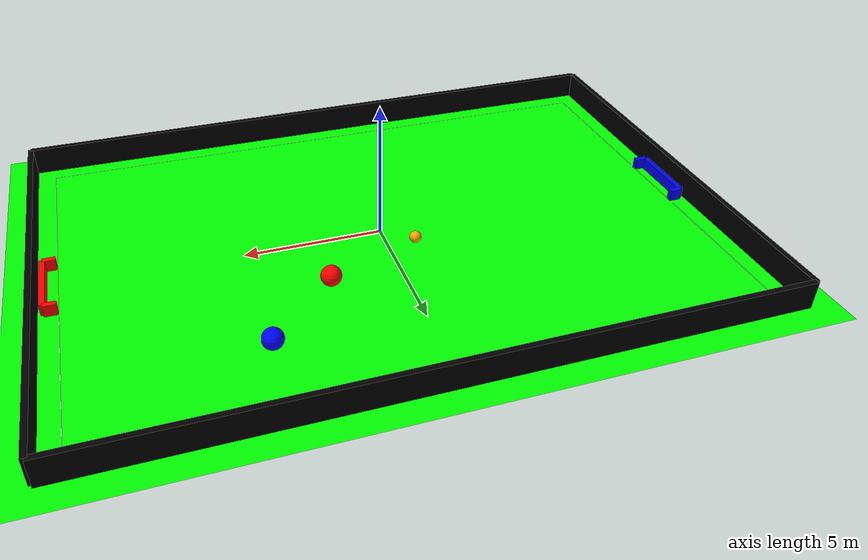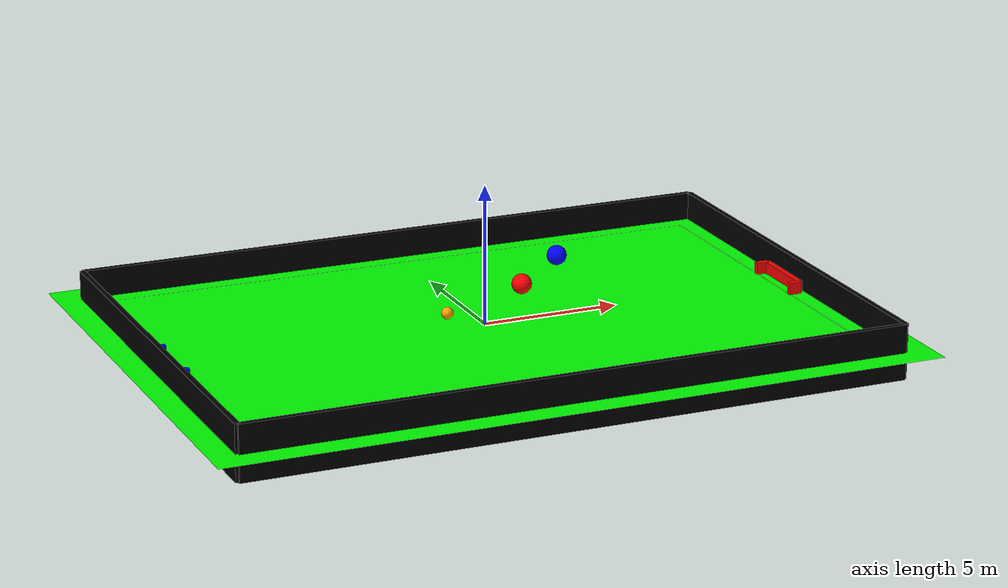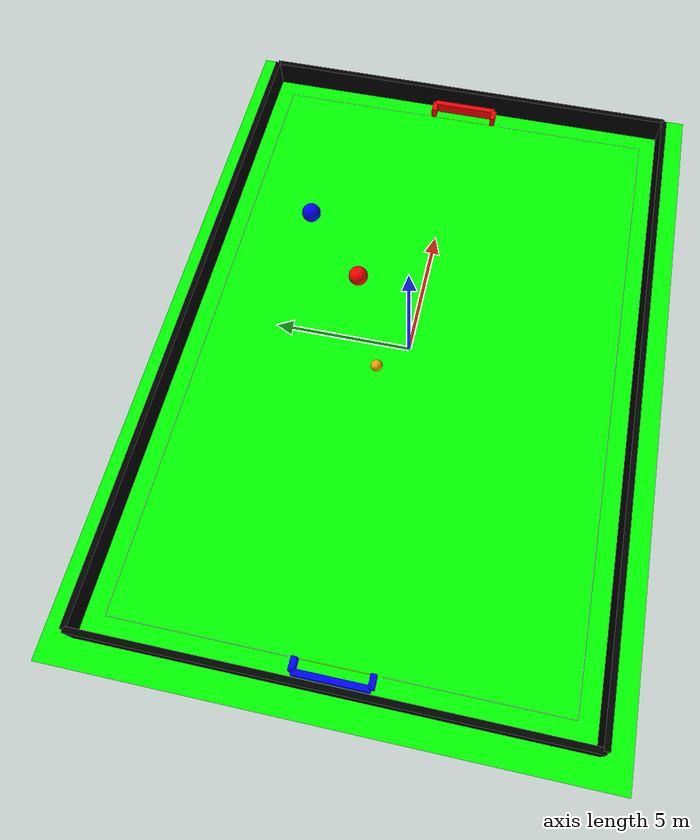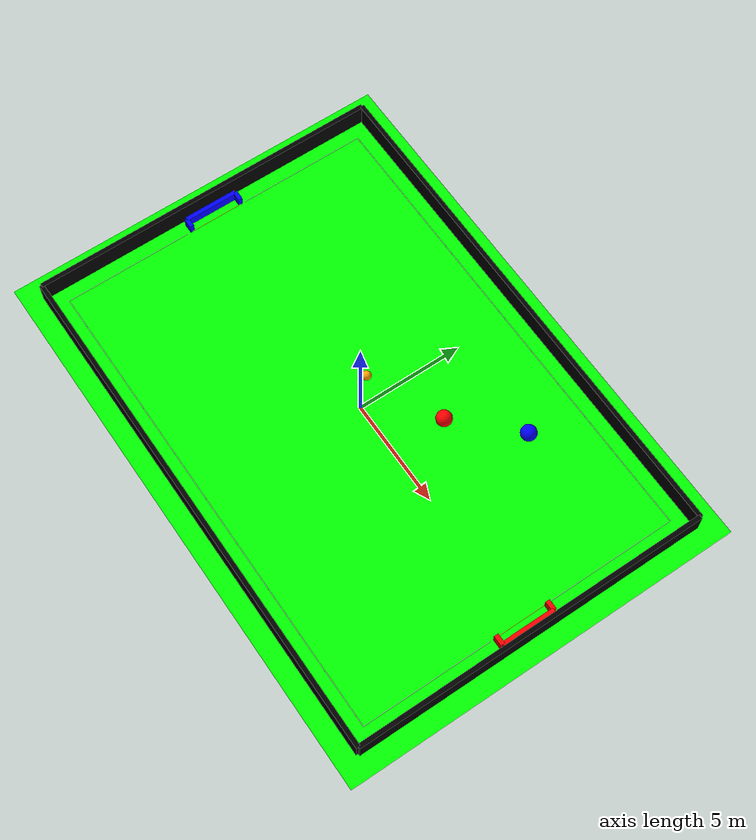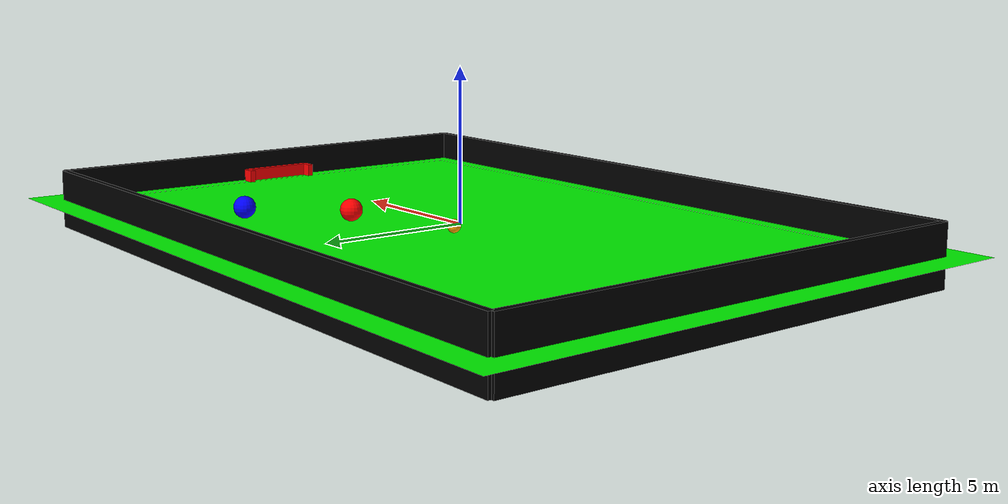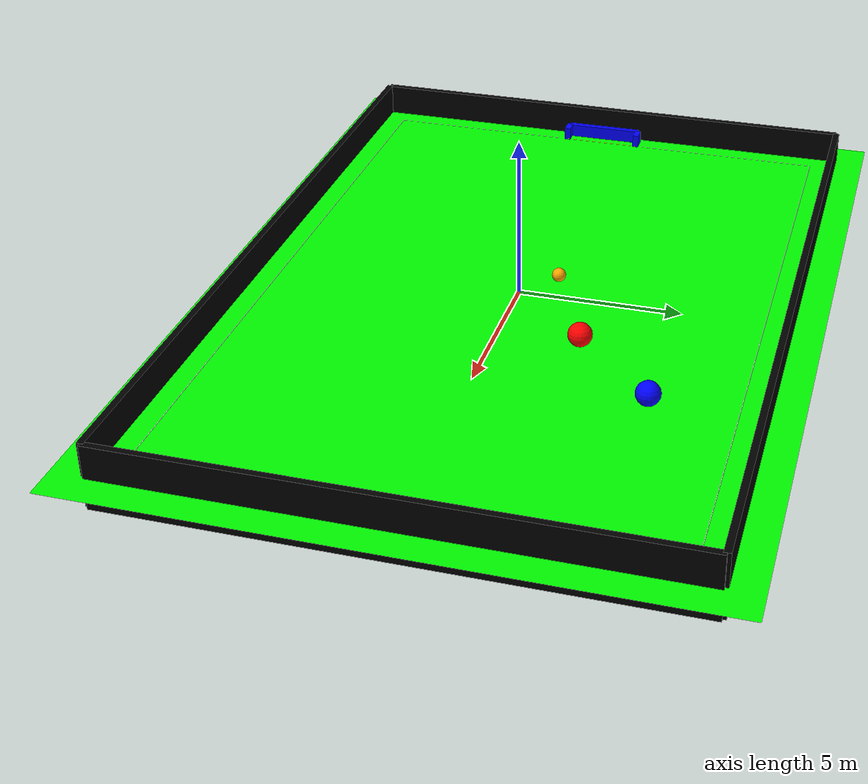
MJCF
<mujoco>

	<default>
		<geom contype="1" conaffinity="1" condim="3" friction=".5 .02 .02" />
	</default>

	<worldbody>

		<body name="arena">

			<geom name="field" type="plane" size="13 9.25 0.1" pos="0 0 0" rgba="0 1 0 1" />

			<geom name="boundary_S" type="box" size="12 0.1 1" pos="0 8.25 0" rgba="0 0 0 1" mass="1000" />
			<geom name="boundary_N" type="box" size="12 0.1 1" pos="0 -8.25 0" rgba="0 0 0 1" mass="1000" />
			<geom name="boundary_W" type="box" size="8.25 0.1 1" pos="12 0 0" rgba="0 0 0 1" euler="0 0 90" mass="1000" />
			<geom name="boundary_E" type="box" size="8.25 0.1 1" pos="-12 0 0" rgba="0 0 0 1" euler="0 0 90" mass="1000" />

			<geom name="goalE_W" type="box" size="1.25 0.1 0.4" pos="11.7 0 0" rgba="1 0 0 1" euler="0 0 90" />
			<geom name="goalE_S" type="box" size="0.225 0.1 0.4" pos="11.475 1.25 0" rgba="1 0 0 1" />
			<geom name="goalE_N" type="box" size="0.225 0.1 0.4" pos="11.475 -1.25 0" rgba="1 0 0 1" />

			<geom name="goalW_E" type="box" size="1.25 0.1 0.4" pos="-11.7 0 0" rgba="0 0 1 1" euler="0 0 90" />
			<geom name="goalW_S" type="box" size="0.225 0.1 0.4" pos="-11.475 1.25 0" rgba="0 0 1 1" />
			<geom name="goalW_N" type="box" size="0.225 0.1 0.4" pos="-11.475 -1.25 0" rgba="0 0 1 1" />

			<geom name="line_S" type="box" size="0.001 11.25 0.01" pos="0 7.5 0" rgba="255 255 255 1" euler="90 0 90" />
			<geom name="line_N" type="box" size="0.001 11.25 0.01" pos="0 -7.5 0" rgba="255 255 255 1" euler="90 0 90" />
			<geom name="line_goalE" type="box" size="0.001 1.25 0.01" pos="-11.25 0 0" rgba="255 255 0 1" euler="0 90 0" />
			<geom name="line_goalE_N" type="box" size="0.001 3 0.01" pos="-11.25 -4.5 0" rgba="255 255 255 1" euler="0 90 0" />
			<geom name="line_goalE_S" type="box" size="0.001 3 0.01" pos="-11.25 4.5 0" rgba="255 255 255 1" euler="0 90 0" />
			<geom name="line_goalW" type="box" size="0.001 1.25 0.01" pos="11.25 0 0" rgba="255 255 0 1" euler="0 90 0" />
			<geom name="line_goalW_N" type="box" size="0.001 3 0.01" pos="11.25 -4.5 0" rgba="255 255 255 1" euler="0 90 0" />
			<geom name="line_goalW_S" type="box" size="0.001 3 0.01" pos="11.25 4.5 0" rgba="255 255 255 1" euler="0 90 0" />

		</body>

		<body name="ball" pos="-1 1 0.215">
			<geom name="ball" type="sphere" size="0.215" rgba="1 0.647 0 1" mass="2.77" friction="1" />
			<joint name="ball" type="free" />
		</body>

		<body name="home_player_1" pos="5 5 0.365">
			<geom name="home_player_1" type="sphere" size="0.365" rgba="0 0 1 1" mass="200" density="100" />
			<joint name="home_player_1" type="free" />
		</body>

				<!-- Obstacles -->
		<body name="away_player_1" pos="2.5 2.5 0.365">
			<geom name="away_player_1" type="sphere" size="0.365" rgba="1 0 0 1" mass="200" density="100" />
			<joint name="away_player_1" type="free" />
		</body>
		<body name="away_player_2" pos="2.5 2.5 0.365">
			<geom name="away_player_2" type="sphere" size="0.365" rgba="1 0 0 1" mass="200" density="100" />
			<joint name="away_player_2" type="free" />
		</body>
		<body name="away_player_3" pos="2.5 2.5 0.365">
			<geom name="away_player_3" type="sphere" size="0.365" rgba="1 0 0 1" mass="200" density="100" />
			<joint name="away_player_3" type="free" />
		</body>

	</worldbody>
</mujoco>
